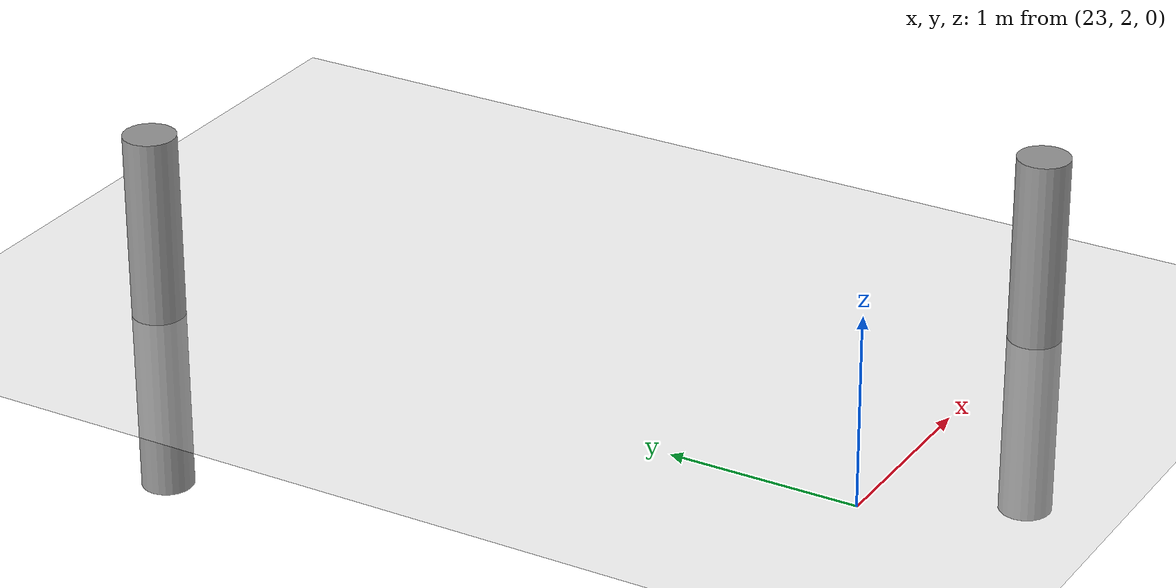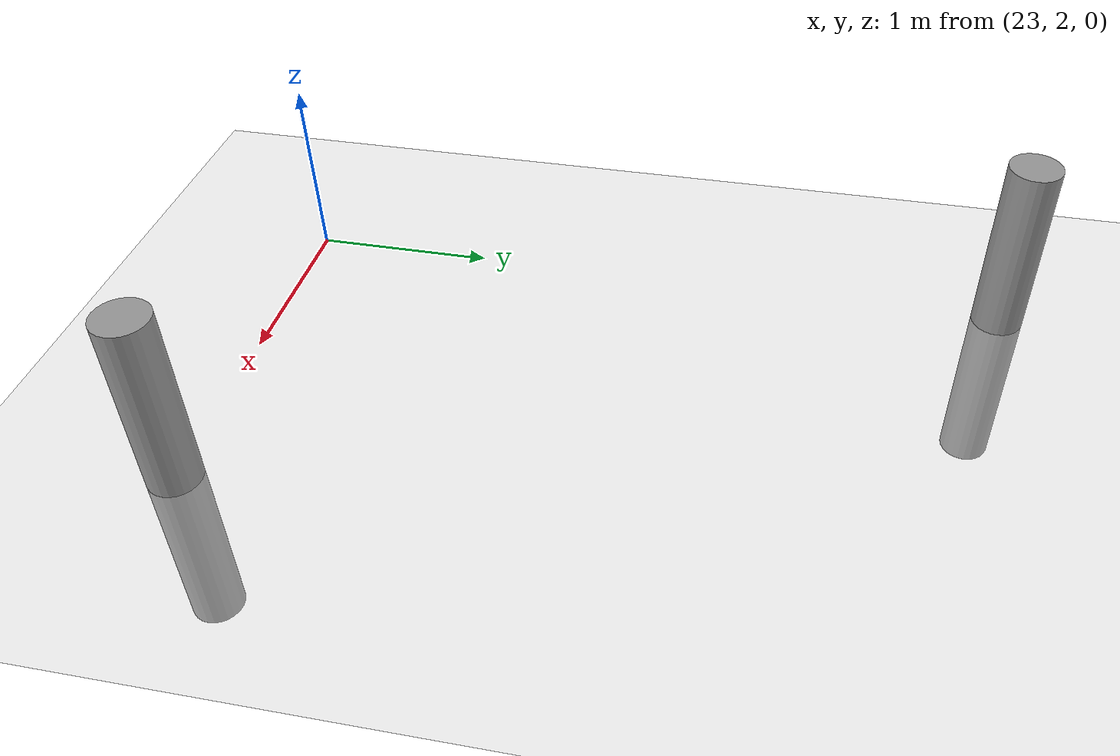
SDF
<sdf version="1.6">
 <world name="default">
  <model name="ground_plane">
   <static>1</static>
   <link name="link">
    <collision name="collision">
     <geometry><plane><normal>0 0 1</normal><size>100 100</size></plane></geometry>
     <surface><friction><ode><mu>100</mu><mu2>50</mu2></ode></friction></surface>
    </collision>
    <visual name="visual">
     <cast_shadows>0</cast_shadows>
     <geometry><plane><normal>0 0 1</normal><size>100 100</size></plane></geometry>
     <material>
      <script><uri>file://media/materials/scripts/gazebo.material</uri><name>Gazebo/Grey</name></script>
     </material>
    </visual>
   </link>
  </model>
  <model name="my_cylinder014_clone_15_0">
   <pose>23 6 0 0 -0 0</pose>
   <link name="my_cylinder014::link">
    <inertial>
     <mass>1</mass>
     <inertia><ixx>0.145833</ixx><ixy>0</ixy><ixz>0</ixz><iyy>0.145833</iyy><iyz>0</iyz><izz>0.125</izz></inertia>
    </inertial>
    <visual name="visual">
     <geometry><cylinder><radius>0.14</radius><length>2</length></cylinder></geometry>
     <material>
      <script><name>Gazebo/Grey</name><uri>file://media/materials/scripts/gazebo.material</uri></script>
      <ambient>0.3 0.3 0.3 1</ambient>
      <diffuse>0.7 0.7 0.7 1</diffuse>
      <specular>1 0.01 0.01 1</specular>
      <emissive>0 0 0 1</emissive>
      <shader type="vertex"><normal_map>__default__</normal_map></shader>
     </material>
    </visual>
    <collision name="collision">
     <geometry><cylinder><radius>0.14</radius><length>2</length></cylinder></geometry>
     <surface>
      <friction>
       <ode><mu>1</mu><mu2>1</mu2><fdir1>0 0 0</fdir1><slip1>0</slip1><slip2>0</slip2></ode>
       <torsional>
        <coefficient>1</coefficient>
        <patch_radius>0</patch_radius>
        <surface_radius>0</surface_radius>
        <use_patch_radius>1</use_patch_radius>
        <ode><slip>0</slip></ode>
       </torsional>
      </friction>
      <bounce><restitution_coefficient>0</restitution_coefficient><threshold>1e+06</threshold></bounce>
      <contact>
       <collide_without_contact>0</collide_without_contact>
       <collide_without_contact_bitmask>1</collide_without_contact_bitmask>
       <collide_bitmask>1</collide_bitmask>
       <ode>
        <soft_cfm>0</soft_cfm>
        <soft_erp>0.2</soft_erp>
        <kp>1e+13</kp>
        <kd>1</kd>
        <max_vel>0.01</max_vel>
        <min_depth>0</min_depth>
       </ode>
       <bullet>
        <split_impulse>1</split_impulse>
        <split_impulse_penetration_threshold>-0.01</split_impulse_penetration_threshold>
        <soft_cfm>0</soft_cfm>
        <soft_erp>0.2</soft_erp>
        <kp>1e+13</kp>
        <kd>1</kd>
       </bullet>
      </contact>
     </surface>
    </collision>
   </link>
   <static>1</static>
  </model>
  <model name="my_cylinder014_clone_15_0">
   <pose>23 6 0 0 -0 0</pose>
   <link name="my_cylinder014::link">
    <inertial>
     <mass>1</mass>
     <inertia><ixx>0.145833</ixx><ixy>0</ixy><ixz>0</ixz><iyy>0.145833</iyy><iyz>0</iyz><izz>0.125</izz></inertia>
    </inertial>
    <visual name="visual">
     <geometry><cylinder><radius>0.14</radius><length>2</length></cylinder></geometry>
     <material>
      <script><name>Gazebo/Grey</name><uri>file://media/materials/scripts/gazebo.material</uri></script>
      <ambient>0.3 0.3 0.3 1</ambient>
      <diffuse>0.7 0.7 0.7 1</diffuse>
      <specular>1 0.01 0.01 1</specular>
      <emissive>0 0 0 1</emissive>
      <shader type="vertex"><normal_map>__default__</normal_map></shader>
     </material>
    </visual>
    <collision name="collision">
     <geometry><cylinder><radius>0.14</radius><length>2</length></cylinder></geometry>
     <surface>
      <friction>
       <ode><mu>1</mu><mu2>1</mu2><fdir1>0 0 0</fdir1><slip1>0</slip1><slip2>0</slip2></ode>
       <torsional>
        <coefficient>1</coefficient>
        <patch_radius>0</patch_radius>
        <surface_radius>0</surface_radius>
        <use_patch_radius>1</use_patch_radius>
        <ode><slip>0</slip></ode>
       </torsional>
      </friction>
      <bounce><restitution_coefficient>0</restitution_coefficient><threshold>1e+06</threshold></bounce>
      <contact>
       <collide_without_contact>0</collide_without_contact>
       <collide_without_contact_bitmask>1</collide_without_contact_bitmask>
       <collide_bitmask>1</collide_bitmask>
       <ode>
        <soft_cfm>0</soft_cfm>
        <soft_erp>0.2</soft_erp>
        <kp>1e+13</kp>
        <kd>1</kd>
        <max_vel>0.01</max_vel>
        <min_depth>0</min_depth>
       </ode>
       <bullet>
        <split_impulse>1</split_impulse>
        <split_impulse_penetration_threshold>-0.01</split_impulse_penetration_threshold>
        <soft_cfm>0</soft_cfm>
        <soft_erp>0.2</soft_erp>
        <kp>1e+13</kp>
        <kd>1</kd>
       </bullet>
      </contact>
     </surface>
    </collision>
   </link>
   <static>1</static>
  </model>
  <model name="my_cylinder014_clone_13_1">
   <pose>25 2 0 0 -0 0</pose>
   <link name="my_cylinder014::link">
    <inertial>
     <mass>1</mass>
     <inertia><ixx>0.145833</ixx><ixy>0</ixy><ixz>0</ixz><iyy>0.145833</iyy><iyz>0</iyz><izz>0.125</izz></inertia>
    </inertial>
    <visual name="visual">
     <geometry><cylinder><radius>0.14</radius><length>2</length></cylinder></geometry>
     <material>
      <script><name>Gazebo/Grey</name><uri>file://media/materials/scripts/gazebo.material</uri></script>
      <ambient>0.3 0.3 0.3 1</ambient>
      <diffuse>0.7 0.7 0.7 1</diffuse>
      <specular>1 0.01 0.01 1</specular>
      <emissive>0 0 0 1</emissive>
      <shader type="vertex"><normal_map>__default__</normal_map></shader>
     </material>
    </visual>
    <collision name="collision">
     <geometry><cylinder><radius>0.14</radius><length>2</length></cylinder></geometry>
     <surface>
      <friction>
       <ode><mu>1</mu><mu2>1</mu2><fdir1>0 0 0</fdir1><slip1>0</slip1><slip2>0</slip2></ode>
       <torsional>
        <coefficient>1</coefficient>
        <patch_radius>0</patch_radius>
        <surface_radius>0</surface_radius>
        <use_patch_radius>1</use_patch_radius>
        <ode><slip>0</slip></ode>
       </torsional>
      </friction>
      <bounce><restitution_coefficient>0</restitution_coefficient><threshold>1e+06</threshold></bounce>
      <contact>
       <collide_without_contact>0</collide_without_contact>
       <collide_without_contact_bitmask>1</collide_without_contact_bitmask>
       <collide_bitmask>1</collide_bitmask>
       <ode>
        <soft_cfm>0</soft_cfm>
        <soft_erp>0.2</soft_erp>
        <kp>1e+13</kp>
        <kd>1</kd>
        <max_vel>0.01</max_vel>
        <min_depth>0</min_depth>
       </ode>
       <bullet>
        <split_impulse>1</split_impulse>
        <split_impulse_penetration_threshold>-0.01</split_impulse_penetration_threshold>
        <soft_cfm>0</soft_cfm>
        <soft_erp>0.2</soft_erp>
        <kp>1e+13</kp>
        <kd>1</kd>
       </bullet>
      </contact>
     </surface>
    </collision>
   </link>
   <static>1</static>
  </model>
 </world>
</sdf>
